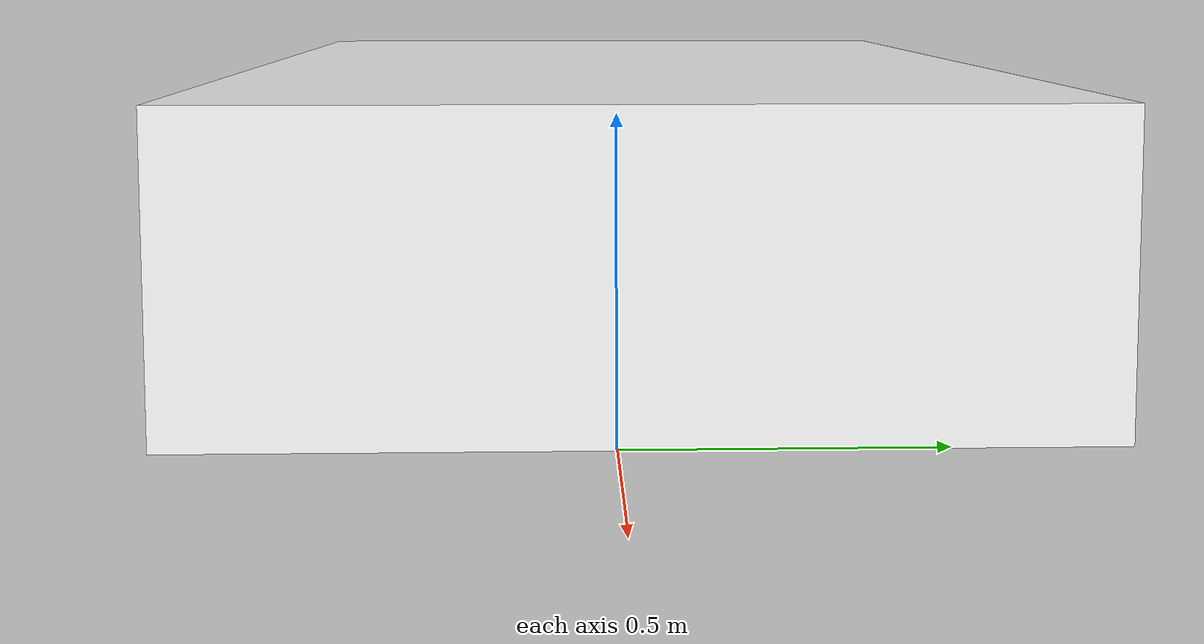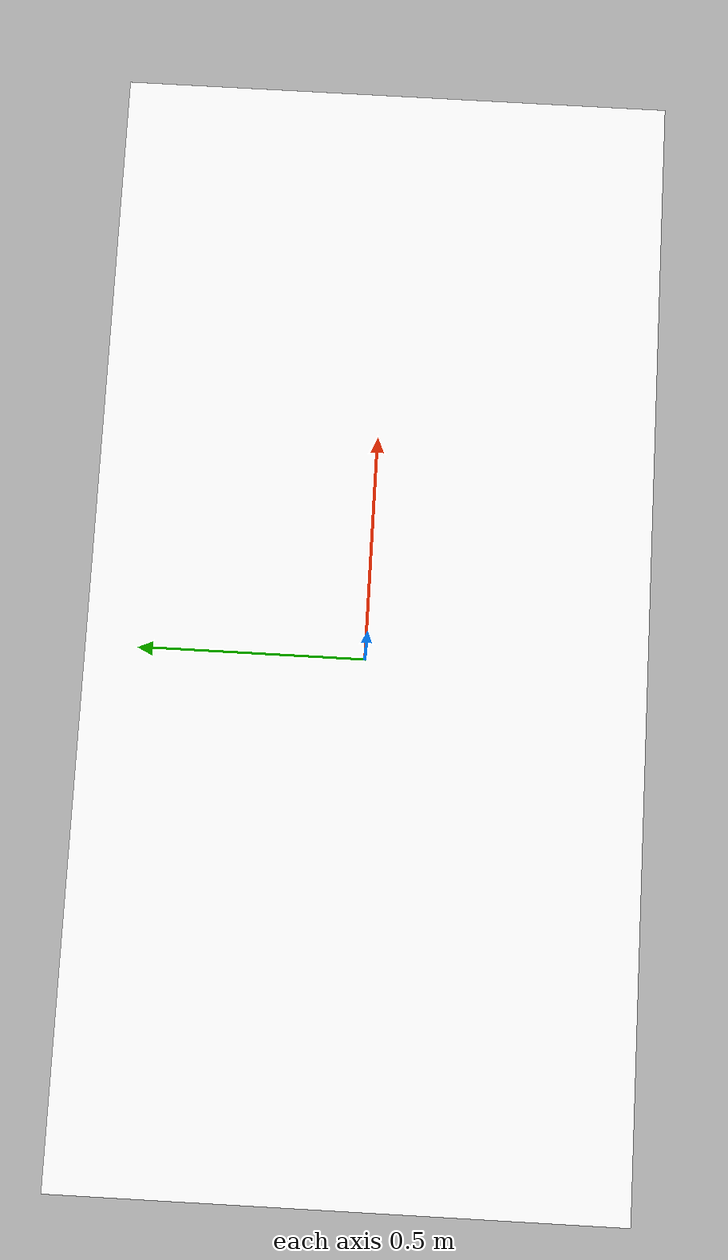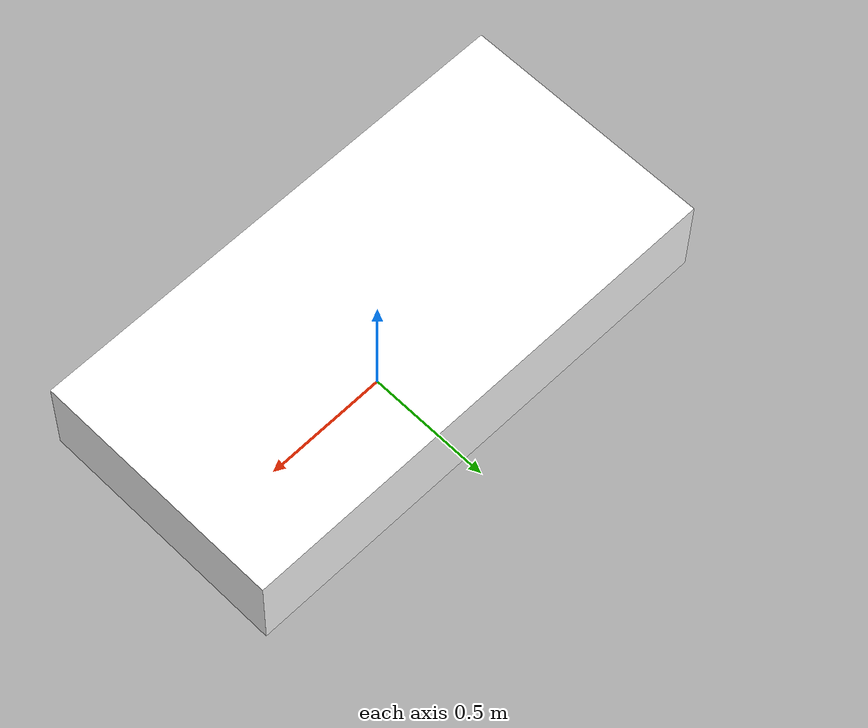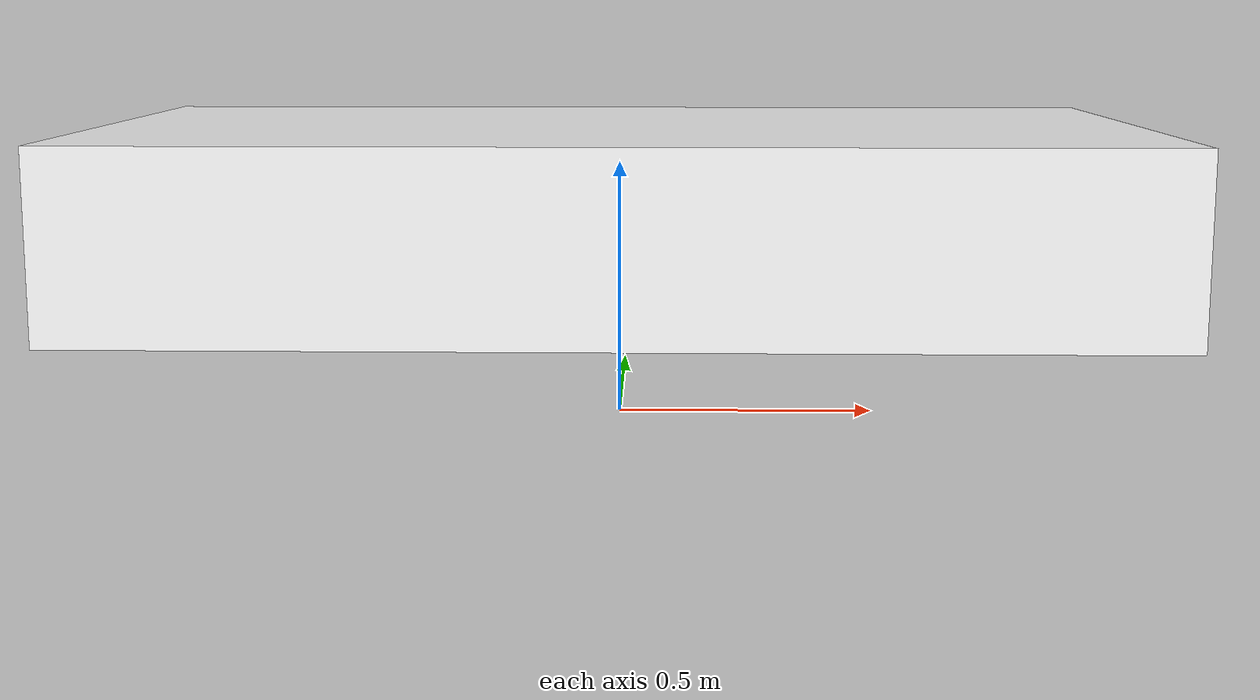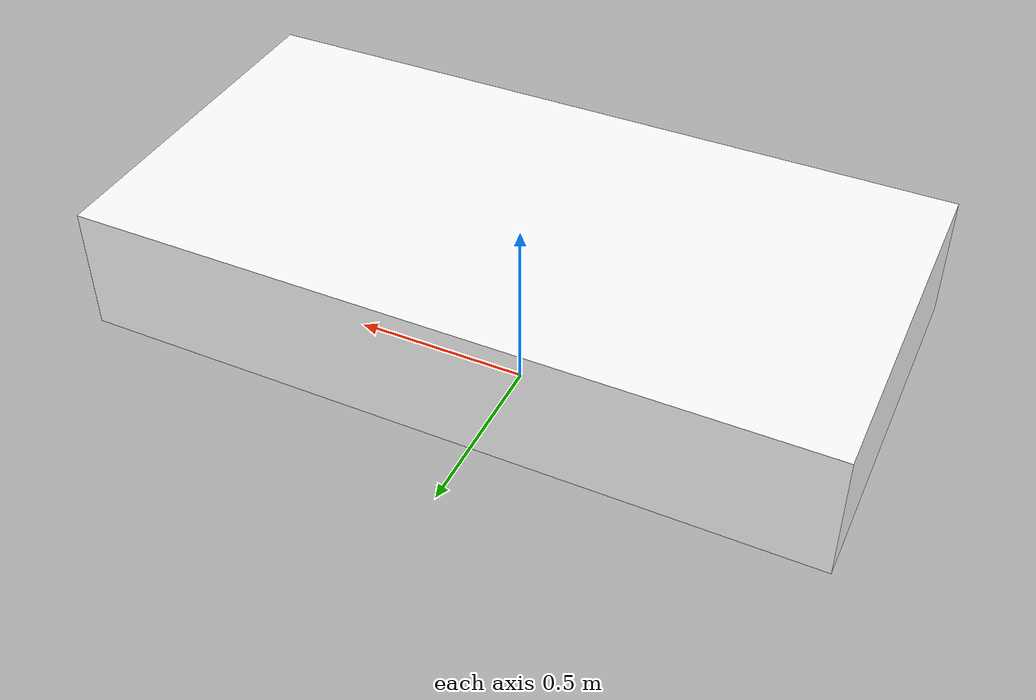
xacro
<?xml version="1.0"?>

<robot xmlns:xacro="http://www.ros.org/wiki/xacro" name="robot_name">

    <xacro:include filename="../guiding files/inertial_macros.xacro"/>
    <xacro:include filename="../Robot Accessories/material.xacro"/>

    <link name="base_link">

        <visual name="base_visual">
            <origin xyz="0.0 0.0 0.4" rpy="0.0 0.0 0.0"/>
            <geometry>
                <box size="2.0 1.0 0.35"/>
            </geometry>
            <material name="white"/>
        </visual>

        <collision name="base_collison">
            <origin xyz="0.0 0.0 0.4" rpy="0.0 0.0 0.0"/>
            <geometry>
                <box size="4.0 2.0 1.0"/>
            </geometry>
        </collision>

        <xacro:inertial_box mass="30" x="4.0" y="2.0" z="1.0">
            <origin xyz="0.0 0 0.4" rpy="0 0 0"/>
        </xacro:inertial_box>
    </link>

</robot>

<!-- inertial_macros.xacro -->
<robot xmlns:xacro="http://www.ros.org/wiki/xacro">

    <!-- Specify some standard inertial calculations https://en.wikipedia.org/wiki/List_of_moments_of_inertia -->
    <!-- These make use of xacro's mathematical functionality -->

    <xacro:macro name="inertial_sphere" params="mass radius *origin">
        <inertial>
            <xacro:insert_block name="origin"/>
            <mass value="${mass}" />
            <inertia ixx="${(2/5) * mass * (radius*radius)}" ixy="0.0" ixz="0.0" iyy="${(2/5) * mass * (radius*radius)}" iyz="0.0" izz="${(2/5) * mass * (radius*radius)}" />
        </inertial>
    </xacro:macro>

    <xacro:macro name="inertial_box" params="mass x y z *origin">
        <inertial>
            <xacro:insert_block name="origin"/>
            <mass value="${mass}" />
            <inertia ixx="${(1/12) * mass * (y*y+z*z)}" ixy="0.0" ixz="0.0" iyy="${(1/12) * mass * (x*x+z*z)}" iyz="0.0" izz="${(1/12) * mass * (x*x+y*y)}" />
        </inertial>
    </xacro:macro>

    <xacro:macro name="inertial_cylinder" params="mass length radius *origin">
        <inertial>
            <xacro:insert_block name="origin"/>
            <mass value="${mass}" />
            <inertia ixx="${(1/12) * mass * (3*radius*radius + length*length)}" ixy="0.0" ixz="0.0" iyy="${(1/12) * mass * (3*radius*radius + length*length)}" iyz="0.0" izz="${(1/2) * mass * (radius*radius)}" />
        </inertial>
    </xacro:macro>

</robot>

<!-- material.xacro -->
<robot xmlns:xacro="http://www.ros.org/wiki/xacro">

    <material name="white">
        <color rgba="1 1 1 1" />
    </material>

    <material name="orange">
        <color rgba="1 0.3 0.1 1"/>
    </material>

    <material name="blue">
        <color rgba="0.2 0.2 1 1"/>
    </material>

    <material name="green">
        <color rgba="0.0 1.0 0.0 1.0"/>
    </material>

    <material name="black">
        <color rgba="0 0 0 1"/>
    </material>

</robot>
